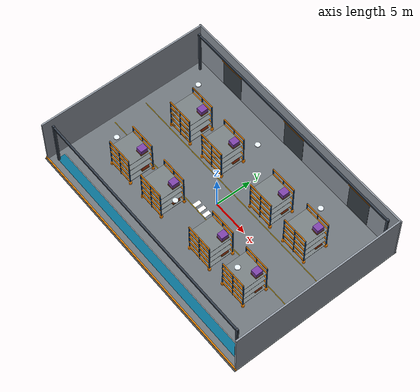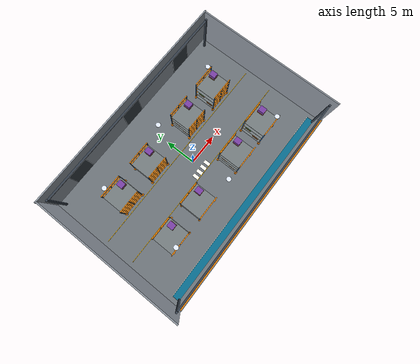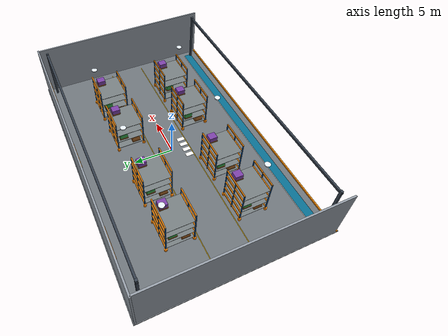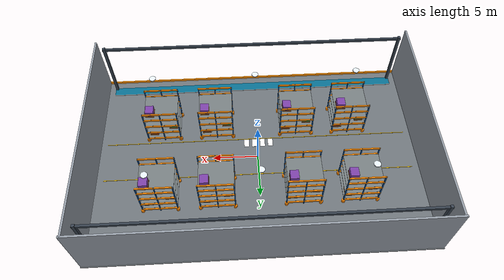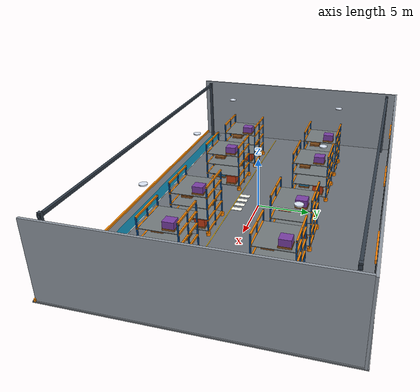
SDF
<sdf version="1.10">
 <world name="swarmroute_warehouse">
  <physics name="warehouse_physics" type="ignored">
   <max_step_size>0.002</max_step_size>
   <real_time_factor>1.0</real_time_factor>
  </physics>
  <plugin filename="gz-sim-physics-system" name="gz::sim::systems::Physics"/>
  <plugin filename="gz-sim-user-commands-system" name="gz::sim::systems::UserCommands"/>
  <plugin filename="gz-sim-scene-broadcaster-system" name="gz::sim::systems::SceneBroadcaster"/>
  <plugin filename="gz-sim-sensors-system" name="gz::sim::systems::Sensors">
   <render_engine>ogre2</render_engine>
  </plugin>
  <gravity>0 0 -9.81</gravity>
  <magnetic_field>5.5645e-6 22.8758e-6 -42.3884e-6</magnetic_field>
  <scene>
   <ambient>0.28 0.30 0.33 1</ambient>
   <background>0.035 0.045 0.06 1</background>
   <shadows>true</shadows>
   <grid>false</grid>
  </scene>
  <light type="directional" name="daylight">
   <pose>0 0 18 0 0 0</pose>
   <diffuse>0.72 0.76 0.82 1</diffuse>
   <specular>0.32 0.34 0.38 1</specular>
   <direction>-0.35 0.25 -0.9</direction>
  </light>
  <light type="point" name="highbay_sw">
   <pose>-11 -6 7 0 0 0</pose>
   <diffuse>0.85 0.90 1 1</diffuse>
   <specular>0.25 0.28 0.34 1</specular>
   <attenuation>
    <range>20</range>
    <constant>0.7</constant>
    <linear>0.03</linear>
    <quadratic>0.005</quadratic>
   </attenuation>
   <cast_shadows>false</cast_shadows>
  </light>
  <light type="point" name="highbay_sc">
   <pose>0 -6 7 0 0 0</pose>
   <diffuse>0.85 0.90 1 1</diffuse>
   <specular>0.25 0.28 0.34 1</specular>
   <attenuation>
    <range>20</range>
    <constant>0.7</constant>
    <linear>0.03</linear>
    <quadratic>0.005</quadratic>
   </attenuation>
   <cast_shadows>false</cast_shadows>
  </light>
  <light type="point" name="highbay_se">
   <pose>11 -6 7 0 0 0</pose>
   <diffuse>0.85 0.90 1 1</diffuse>
   <specular>0.25 0.28 0.34 1</specular>
   <attenuation>
    <range>20</range>
    <constant>0.7</constant>
    <linear>0.03</linear>
    <quadratic>0.005</quadratic>
   </attenuation>
   <cast_shadows>false</cast_shadows>
  </light>
  <light type="point" name="highbay_nw">
   <pose>-11 6 7 0 0 0</pose>
   <diffuse>0.85 0.90 1 1</diffuse>
   <specular>0.25 0.28 0.34 1</specular>
   <attenuation>
    <range>20</range>
    <constant>0.7</constant>
    <linear>0.03</linear>
    <quadratic>0.005</quadratic>
   </attenuation>
   <cast_shadows>false</cast_shadows>
  </light>
  <light type="point" name="highbay_nc">
   <pose>0 6 7 0 0 0</pose>
   <diffuse>0.85 0.90 1 1</diffuse>
   <specular>0.25 0.28 0.34 1</specular>
   <attenuation>
    <range>20</range>
    <constant>0.7</constant>
    <linear>0.03</linear>
    <quadratic>0.005</quadratic>
   </attenuation>
   <cast_shadows>false</cast_shadows>
  </light>
  <light type="point" name="highbay_ne">
   <pose>11 6 7 0 0 0</pose>
   <diffuse>0.85 0.90 1 1</diffuse>
   <specular>0.25 0.28 0.34 1</specular>
   <attenuation>
    <range>20</range>
    <constant>0.7</constant>
    <linear>0.03</linear>
    <quadratic>0.005</quadratic>
   </attenuation>
   <cast_shadows>false</cast_shadows>
  </light>
  <model name="warehouse_floor">
   <static>true</static>
   <link name="floor">
    <collision name="collision"><geometry><box><size>36 24 0.12</size></box></geometry></collision>
    <visual name="visual">
     <geometry><box><size>36 24 0.12</size></box></geometry>
     <material>
      <ambient>0.24 0.255 0.27 1</ambient>
      <diffuse>0.43 0.455 0.48 1</diffuse>
      <specular>0.28 0.30 0.32 1</specular>
     </material>
    </visual>
   </link>
  </model>
  <model name="north_wall">
   <static>true</static>
   <pose>0 11.8 3.5 0 0 0</pose>
   <link name="wall">
    <collision name="collision"><geometry><box><size>36 0.2 7</size></box></geometry></collision>
    <visual name="visual">
     <geometry><box><size>36 0.2 7</size></box></geometry>
     <material>
      <ambient>0.34 0.36 0.39 1</ambient>
      <diffuse>0.58 0.61 0.65 1</diffuse>
      <specular>0.25 0.25 0.25 1</specular>
     </material>
    </visual>
   </link>
  </model>
  <model name="south_safety_barrier">
   <static>true</static>
   <pose>0 -11.8 0.14 0 0 0</pose>
   <link name="barrier">
    <collision name="collision"><geometry><box><size>36 0.16 0.28</size></box></geometry></collision>
    <visual name="visual">
     <geometry><box><size>36 0.16 0.28</size></box></geometry>
     <material><ambient>0.75 0.35 0 1</ambient><diffuse>1 0.55 0.01 1</diffuse></material>
    </visual>
   </link>
  </model>
  <model name="east_wall">
   <static>true</static>
   <pose>17.8 0 3.5 0 0 0</pose>
   <link name="wall">
    <collision name="collision"><geometry><box><size>0.2 23.6 7</size></box></geometry></collision>
    <visual name="visual">
     <geometry><box><size>0.2 23.6 7</size></box></geometry>
     <material><ambient>0.34 0.36 0.39 1</ambient><diffuse>0.58 0.61 0.65 1</diffuse></material>
    </visual>
   </link>
  </model>
  <model name="west_wall">
   <static>true</static>
   <pose>-17.8 0 3.5 0 0 0</pose>
   <link name="wall">
    <collision name="collision"><geometry><box><size>0.2 23.6 7</size></box></geometry></collision>
    <visual name="visual">
     <geometry><box><size>0.2 23.6 7</size></box></geometry>
     <material><ambient>0.34 0.36 0.39 1</ambient><diffuse>0.58 0.61 0.65 1</diffuse></material>
    </visual>
   </link>
  </model>
  <model name="warehouse_details">
   <static>true</static>
   <link name="architecture">
    <visual name="aisle_south">
     <pose>0 -2.35 0.071 0 0 0</pose>
     <geometry><box><size>34 0.075 0.012</size></box></geometry>
     <material>
      <ambient>0.75 0.52 0.01 1</ambient>
      <diffuse>1 0.76 0.02 1</diffuse>
      <emissive>0.08 0.04 0 1</emissive>
     </material>
    </visual>
    <visual name="aisle_north">
     <pose>0 2.35 0.071 0 0 0</pose>
     <geometry><box><size>34 0.075 0.012</size></box></geometry>
     <material>
      <ambient>0.75 0.52 0.01 1</ambient>
      <diffuse>1 0.76 0.02 1</diffuse>
      <emissive>0.08 0.04 0 1</emissive>
     </material>
    </visual>
    <visual name="pedestrian_lane">
     <pose>0 -10.35 0.07 0 0 0</pose>
     <geometry><box><size>34 1.10 0.01</size></box></geometry>
     <material><ambient>0.02 0.25 0.34 1</ambient><diffuse>0.03 0.43 0.56 1</diffuse></material>
    </visual>
    <visual name="pedestrian_border">
     <pose>0 -9.78 0.076 0 0 0</pose>
     <geometry><box><size>34 0.07 0.014</size></box></geometry>
     <material><ambient>0.92 0.92 0.88 1</ambient><diffuse>1 1 0.96 1</diffuse></material>
    </visual>
    <visual name="crosswalk_1">
     <pose>-1.5 -1.8 0.078 0 0 0</pose>
     <geometry><box><size>0.55 1.0 0.015</size></box></geometry>
     <material><ambient>0.9 0.9 0.86 1</ambient><diffuse>1 1 0.96 1</diffuse></material>
    </visual>
    <visual name="crosswalk_2">
     <pose>-0.6 -1.8 0.078 0 0 0</pose>
     <geometry><box><size>0.55 1.0 0.015</size></box></geometry>
     <material><ambient>0.9 0.9 0.86 1</ambient><diffuse>1 1 0.96 1</diffuse></material>
    </visual>
    <visual name="crosswalk_3">
     <pose>0.3 -1.8 0.078 0 0 0</pose>
     <geometry><box><size>0.55 1.0 0.015</size></box></geometry>
     <material><ambient>0.9 0.9 0.86 1</ambient><diffuse>1 1 0.96 1</diffuse></material>
    </visual>
    <visual name="crosswalk_4">
     <pose>1.2 -1.8 0.078 0 0 0</pose>
     <geometry><box><size>0.55 1.0 0.015</size></box></geometry>
     <material><ambient>0.9 0.9 0.86 1</ambient><diffuse>1 1 0.96 1</diffuse></material>
    </visual>
    <visual name="column_nw">
     <pose>-16.8 10.8 3.5 0 0 0</pose>
     <geometry><box><size>0.28 0.28 7</size></box></geometry>
     <material>
      <ambient>0.11 0.13 0.16 1</ambient>
      <diffuse>0.22 0.26 0.31 1</diffuse>
      <specular>0.5 0.5 0.5 1</specular>
     </material>
    </visual>
    <visual name="column_ne">
     <pose>16.8 10.8 3.5 0 0 0</pose>
     <geometry><box><size>0.28 0.28 7</size></box></geometry>
     <material>
      <ambient>0.11 0.13 0.16 1</ambient>
      <diffuse>0.22 0.26 0.31 1</diffuse>
      <specular>0.5 0.5 0.5 1</specular>
     </material>
    </visual>
    <visual name="column_sw">
     <pose>-16.8 -10.8 3.5 0 0 0</pose>
     <geometry><box><size>0.28 0.28 7</size></box></geometry>
     <material>
      <ambient>0.11 0.13 0.16 1</ambient>
      <diffuse>0.22 0.26 0.31 1</diffuse>
      <specular>0.5 0.5 0.5 1</specular>
     </material>
    </visual>
    <visual name="column_se">
     <pose>16.8 -10.8 3.5 0 0 0</pose>
     <geometry><box><size>0.28 0.28 7</size></box></geometry>
     <material>
      <ambient>0.11 0.13 0.16 1</ambient>
      <diffuse>0.22 0.26 0.31 1</diffuse>
      <specular>0.5 0.5 0.5 1</specular>
     </material>
    </visual>
    <visual name="beam_north">
     <pose>0 10.8 6.75 0 0 0</pose>
     <geometry><box><size>34 0.24 0.28</size></box></geometry>
     <material><ambient>0.10 0.12 0.15 1</ambient><diffuse>0.20 0.24 0.29 1</diffuse></material>
    </visual>
    <visual name="beam_south">
     <pose>0 -10.8 6.75 0 0 0</pose>
     <geometry><box><size>34 0.24 0.28</size></box></geometry>
     <material><ambient>0.10 0.12 0.15 1</ambient><diffuse>0.20 0.24 0.29 1</diffuse></material>
    </visual>
    <visual name="dock_door_1">
     <pose>-11.5 11.68 2.35 0 0 0</pose>
     <geometry><box><size>3.4 0.05 4.25</size></box></geometry>
     <material>
      <ambient>0.10 0.12 0.14 1</ambient>
      <diffuse>0.22 0.25 0.28 1</diffuse>
      <specular>0.35 0.35 0.35 1</specular>
     </material>
    </visual>
    <visual name="dock_door_2">
     <pose>0 11.68 2.35 0 0 0</pose>
     <geometry><box><size>3.4 0.05 4.25</size></box></geometry>
     <material>
      <ambient>0.10 0.12 0.14 1</ambient>
      <diffuse>0.22 0.25 0.28 1</diffuse>
      <specular>0.35 0.35 0.35 1</specular>
     </material>
    </visual>
    <visual name="dock_door_3">
     <pose>11.5 11.68 2.35 0 0 0</pose>
     <geometry><box><size>3.4 0.05 4.25</size></box></geometry>
     <material>
      <ambient>0.10 0.12 0.14 1</ambient>
      <diffuse>0.22 0.25 0.28 1</diffuse>
      <specular>0.35 0.35 0.35 1</specular>
     </material>
    </visual>
    <visual name="dock_header_1">
     <pose>-11.5 11.62 4.75 0 0 0</pose>
     <geometry><box><size>3.7 0.12 0.28</size></box></geometry>
     <material><ambient>0.72 0.31 0 1</ambient><diffuse>1 0.52 0.01 1</diffuse></material>
    </visual>
    <visual name="dock_header_2">
     <pose>0 11.62 4.75 0 0 0</pose>
     <geometry><box><size>3.7 0.12 0.28</size></box></geometry>
     <material><ambient>0.72 0.31 0 1</ambient><diffuse>1 0.52 0.01 1</diffuse></material>
    </visual>
    <visual name="dock_header_3">
     <pose>11.5 11.62 4.75 0 0 0</pose>
     <geometry><box><size>3.7 0.12 0.28</size></box></geometry>
     <material><ambient>0.72 0.31 0 1</ambient><diffuse>1 0.52 0.01 1</diffuse></material>
    </visual>
    <visual name="fixture_sw">
     <pose>-11 -6 6.95 0 0 0</pose>
     <geometry><cylinder><radius>0.34</radius><length>0.10</length></cylinder></geometry>
     <material>
      <ambient>0.7 0.74 0.82 1</ambient>
      <diffuse>0.9 0.94 1 1</diffuse>
      <emissive>0.5 0.55 0.65 1</emissive>
     </material>
    </visual>
    <visual name="fixture_sc">
     <pose>0 -6 6.95 0 0 0</pose>
     <geometry><cylinder><radius>0.34</radius><length>0.10</length></cylinder></geometry>
     <material>
      <ambient>0.7 0.74 0.82 1</ambient>
      <diffuse>0.9 0.94 1 1</diffuse>
      <emissive>0.5 0.55 0.65 1</emissive>
     </material>
    </visual>
    <visual name="fixture_se">
     <pose>11 -6 6.95 0 0 0</pose>
     <geometry><cylinder><radius>0.34</radius><length>0.10</length></cylinder></geometry>
     <material>
      <ambient>0.7 0.74 0.82 1</ambient>
      <diffuse>0.9 0.94 1 1</diffuse>
      <emissive>0.5 0.55 0.65 1</emissive>
     </material>
    </visual>
    <visual name="fixture_nw">
     <pose>-11 6 6.95 0 0 0</pose>
     <geometry><cylinder><radius>0.34</radius><length>0.10</length></cylinder></geometry>
     <material>
      <ambient>0.7 0.74 0.82 1</ambient>
      <diffuse>0.9 0.94 1 1</diffuse>
      <emissive>0.5 0.55 0.65 1</emissive>
     </material>
    </visual>
    <visual name="fixture_nc">
     <pose>0 6 6.95 0 0 0</pose>
     <geometry><cylinder><radius>0.34</radius><length>0.10</length></cylinder></geometry>
     <material>
      <ambient>0.7 0.74 0.82 1</ambient>
      <diffuse>0.9 0.94 1 1</diffuse>
      <emissive>0.5 0.55 0.65 1</emissive>
     </material>
    </visual>
    <visual name="fixture_ne">
     <pose>11 6 6.95 0 0 0</pose>
     <geometry><cylinder><radius>0.34</radius><length>0.10</length></cylinder></geometry>
     <material>
      <ambient>0.7 0.74 0.82 1</ambient>
      <diffuse>0.9 0.94 1 1</diffuse>
      <emissive>0.5 0.55 0.65 1</emissive>
     </material>
    </visual>
   </link>
  </model>
  <include><uri>model://swarmroute_rack</uri><name>rack_north_01</name><pose>-10.5 -4.5 0 0 0 0</pose></include>
  <include><uri>model://swarmroute_rack</uri><name>rack_north_02</name><pose>-4.5 -4.5 0 0 0 0</pose></include>
  <include><uri>model://swarmroute_rack</uri><name>rack_north_03</name><pose>4.5 -4.5 0 0 0 0</pose></include>
  <include><uri>model://swarmroute_rack</uri><name>rack_north_04</name><pose>10.5 -4.5 0 0 0 0</pose></include>
  <include><uri>model://swarmroute_rack</uri><name>rack_south_01</name><pose>-10.5 4.5 0 0 0 0</pose></include>
  <include><uri>model://swarmroute_rack</uri><name>rack_south_02</name><pose>-4.5 4.5 0 0 0 0</pose></include>
  <include><uri>model://swarmroute_rack</uri><name>rack_south_03</name><pose>4.5 4.5 0 0 0 0</pose></include>
  <include><uri>model://swarmroute_rack</uri><name>rack_south_04</name><pose>10.5 4.5 0 0 0 0</pose></include>
 </world>
</sdf>

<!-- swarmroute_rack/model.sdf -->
<sdf version="1.10">
  <model name="swarmroute_rack">
    <static>true</static>
    <link name="rack">
      <collision name="collision"><pose>0 0 2.4 0 0 0</pose><geometry><box><size>3.9 3.9 4.8</size></box></geometry></collision>

      <!-- Blue uprights -->
      <visual name="post_nw"><pose>-1.82 1.70 2.4 0 0 0</pose><geometry><box><size>0.11 0.11 4.8</size></box></geometry><material><ambient>0.03 0.16 0.30 1</ambient><diffuse>0.04 0.30 0.58 1</diffuse><specular>0.45 0.45 0.45 1</specular></material></visual>
      <visual name="post_ne"><pose>1.82 1.70 2.4 0 0 0</pose><geometry><box><size>0.11 0.11 4.8</size></box></geometry><material><ambient>0.03 0.16 0.30 1</ambient><diffuse>0.04 0.30 0.58 1</diffuse><specular>0.45 0.45 0.45 1</specular></material></visual>
      <visual name="post_sw"><pose>-1.82 -1.70 2.4 0 0 0</pose><geometry><box><size>0.11 0.11 4.8</size></box></geometry><material><ambient>0.03 0.16 0.30 1</ambient><diffuse>0.04 0.30 0.58 1</diffuse><specular>0.45 0.45 0.45 1</specular></material></visual>
      <visual name="post_se"><pose>1.82 -1.70 2.4 0 0 0</pose><geometry><box><size>0.11 0.11 4.8</size></box></geometry><material><ambient>0.03 0.16 0.30 1</ambient><diffuse>0.04 0.30 0.58 1</diffuse><specular>0.45 0.45 0.45 1</specular></material></visual>
      <visual name="post_mid_n"><pose>0 1.70 2.4 0 0 0</pose><geometry><box><size>0.10 0.10 4.8</size></box></geometry><material><ambient>0.03 0.16 0.30 1</ambient><diffuse>0.04 0.30 0.58 1</diffuse></material></visual>
      <visual name="post_mid_s"><pose>0 -1.70 2.4 0 0 0</pose><geometry><box><size>0.10 0.10 4.8</size></box></geometry><material><ambient>0.03 0.16 0.30 1</ambient><diffuse>0.04 0.30 0.58 1</diffuse></material></visual>

      <!-- Orange load beams -->
      <visual name="beam_n_1"><pose>0 1.70 0.45 0 0 0</pose><geometry><box><size>3.75 0.13 0.16</size></box></geometry><material><ambient>0.68 0.34 0.01 1</ambient><diffuse>0.95 0.52 0.015 1</diffuse></material></visual>
      <visual name="beam_n_2"><pose>0 1.70 1.55 0 0 0</pose><geometry><box><size>3.75 0.13 0.16</size></box></geometry><material><ambient>0.68 0.34 0.01 1</ambient><diffuse>0.95 0.52 0.015 1</diffuse></material></visual>
      <visual name="beam_n_3"><pose>0 1.70 2.65 0 0 0</pose><geometry><box><size>3.75 0.13 0.16</size></box></geometry><material><ambient>0.68 0.34 0.01 1</ambient><diffuse>0.95 0.52 0.015 1</diffuse></material></visual>
      <visual name="beam_n_4"><pose>0 1.70 3.75 0 0 0</pose><geometry><box><size>3.75 0.13 0.16</size></box></geometry><material><ambient>0.68 0.34 0.01 1</ambient><diffuse>0.95 0.52 0.015 1</diffuse></material></visual>
      <visual name="beam_n_5"><pose>0 1.70 4.72 0 0 0</pose><geometry><box><size>3.75 0.13 0.16</size></box></geometry><material><ambient>0.68 0.34 0.01 1</ambient><diffuse>0.95 0.52 0.015 1</diffuse></material></visual>
      <visual name="beam_s_1"><pose>0 -1.70 0.45 0 0 0</pose><geometry><box><size>3.75 0.13 0.16</size></box></geometry><material><ambient>0.68 0.34 0.01 1</ambient><diffuse>0.95 0.52 0.015 1</diffuse></material></visual>
      <visual name="beam_s_2"><pose>0 -1.70 1.55 0 0 0</pose><geometry><box><size>3.75 0.13 0.16</size></box></geometry><material><ambient>0.68 0.34 0.01 1</ambient><diffuse>0.95 0.52 0.015 1</diffuse></material></visual>
      <visual name="beam_s_3"><pose>0 -1.70 2.65 0 0 0</pose><geometry><box><size>3.75 0.13 0.16</size></box></geometry><material><ambient>0.68 0.34 0.01 1</ambient><diffuse>0.95 0.52 0.015 1</diffuse></material></visual>
      <visual name="beam_s_4"><pose>0 -1.70 3.75 0 0 0</pose><geometry><box><size>3.75 0.13 0.16</size></box></geometry><material><ambient>0.68 0.34 0.01 1</ambient><diffuse>0.95 0.52 0.015 1</diffuse></material></visual>
      <visual name="beam_s_5"><pose>0 -1.70 4.72 0 0 0</pose><geometry><box><size>3.75 0.13 0.16</size></box></geometry><material><ambient>0.68 0.34 0.01 1</ambient><diffuse>0.95 0.52 0.015 1</diffuse></material></visual>

      <!-- Galvanized shelf decks -->
      <visual name="deck_1"><pose>0 0 0.49 0 0 0</pose><geometry><box><size>3.64 3.24 0.055</size></box></geometry><material><ambient>0.22 0.24 0.25 1</ambient><diffuse>0.46 0.49 0.50 1</diffuse><specular>0.65 0.65 0.65 1</specular></material></visual>
      <visual name="deck_2"><pose>0 0 1.59 0 0 0</pose><geometry><box><size>3.64 3.24 0.055</size></box></geometry><material><ambient>0.22 0.24 0.25 1</ambient><diffuse>0.46 0.49 0.50 1</diffuse><specular>0.65 0.65 0.65 1</specular></material></visual>
      <visual name="deck_3"><pose>0 0 2.69 0 0 0</pose><geometry><box><size>3.64 3.24 0.055</size></box></geometry><material><ambient>0.22 0.24 0.25 1</ambient><diffuse>0.46 0.49 0.50 1</diffuse><specular>0.65 0.65 0.65 1</specular></material></visual>
      <visual name="deck_4"><pose>0 0 3.79 0 0 0</pose><geometry><box><size>3.64 3.24 0.055</size></box></geometry><material><ambient>0.22 0.24 0.25 1</ambient><diffuse>0.46 0.49 0.50 1</diffuse><specular>0.65 0.65 0.65 1</specular></material></visual>

      <!-- Pallets and varied loads -->
      <visual name="pallet_a"><pose>-1.15 -0.78 0.60 0 0 0</pose><geometry><box><size>0.95 1.05 0.16</size></box></geometry><material><ambient>0.32 0.18 0.07 1</ambient><diffuse>0.58 0.34 0.13 1</diffuse></material></visual>
      <visual name="load_a"><pose>-1.15 -0.78 1.02 0 0 0</pose><geometry><box><size>0.88 0.98 0.68</size></box></geometry><material><ambient>0.34 0.20 0.08 1</ambient><diffuse>0.66 0.40 0.15 1</diffuse></material></visual>
      <visual name="pallet_b"><pose>0 -0.78 0.60 0 0 0</pose><geometry><box><size>0.95 1.05 0.16</size></box></geometry><material><ambient>0.32 0.18 0.07 1</ambient><diffuse>0.58 0.34 0.13 1</diffuse></material></visual>
      <visual name="load_b"><pose>0 -0.78 0.95 0 0 0</pose><geometry><box><size>0.88 0.98 0.54</size></box></geometry><material><ambient>0.10 0.30 0.42 1</ambient><diffuse>0.16 0.50 0.66 1</diffuse></material></visual>
      <visual name="pallet_c"><pose>1.15 0.78 0.60 0 0 0</pose><geometry><box><size>0.95 1.05 0.16</size></box></geometry><material><ambient>0.32 0.18 0.07 1</ambient><diffuse>0.58 0.34 0.13 1</diffuse></material></visual>
      <visual name="load_c"><pose>1.15 0.78 1.03 0 0 0</pose><geometry><box><size>0.88 0.98 0.70</size></box></geometry><material><ambient>0.43 0.12 0.05 1</ambient><diffuse>0.78 0.24 0.08 1</diffuse></material></visual>
      <visual name="pallet_d"><pose>-1.15 0.78 1.70 0 0 0</pose><geometry><box><size>0.95 1.05 0.16</size></box></geometry><material><ambient>0.32 0.18 0.07 1</ambient><diffuse>0.58 0.34 0.13 1</diffuse></material></visual>
      <visual name="load_d"><pose>-1.15 0.78 2.08 0 0 0</pose><geometry><box><size>0.88 0.98 0.60</size></box></geometry><material><ambient>0.12 0.34 0.16 1</ambient><diffuse>0.20 0.62 0.28 1</diffuse></material></visual>
      <visual name="pallet_e"><pose>0 -0.78 2.80 0 0 0</pose><geometry><box><size>0.95 1.05 0.16</size></box></geometry><material><ambient>0.32 0.18 0.07 1</ambient><diffuse>0.58 0.34 0.13 1</diffuse></material></visual>
      <visual name="load_e"><pose>0 -0.78 3.20 0 0 0</pose><geometry><box><size>0.88 0.98 0.64</size></box></geometry><material><ambient>0.34 0.20 0.08 1</ambient><diffuse>0.66 0.40 0.15 1</diffuse></material></visual>
      <visual name="pallet_f"><pose>1.15 0.78 3.90 0 0 0</pose><geometry><box><size>0.95 1.05 0.16</size></box></geometry><material><ambient>0.32 0.18 0.07 1</ambient><diffuse>0.58 0.34 0.13 1</diffuse></material></visual>
      <visual name="load_f"><pose>1.15 0.78 4.28 0 0 0</pose><geometry><box><size>0.88 0.98 0.60</size></box></geometry><material><ambient>0.26 0.14 0.36 1</ambient><diffuse>0.48 0.25 0.65 1</diffuse></material></visual>

      <!-- High-visibility post guards -->
      <visual name="guard_nw"><pose>-1.82 1.70 0.18 0 0 0</pose><geometry><cylinder><radius>0.19</radius><length>0.36</length></cylinder></geometry><material><ambient>0.72 0.31 0 1</ambient><diffuse>1 0.52 0.01 1</diffuse></material></visual>
      <visual name="guard_ne"><pose>1.82 1.70 0.18 0 0 0</pose><geometry><cylinder><radius>0.19</radius><length>0.36</length></cylinder></geometry><material><ambient>0.72 0.31 0 1</ambient><diffuse>1 0.52 0.01 1</diffuse></material></visual>
      <visual name="guard_sw"><pose>-1.82 -1.70 0.18 0 0 0</pose><geometry><cylinder><radius>0.19</radius><length>0.36</length></cylinder></geometry><material><ambient>0.72 0.31 0 1</ambient><diffuse>1 0.52 0.01 1</diffuse></material></visual>
      <visual name="guard_se"><pose>1.82 -1.70 0.18 0 0 0</pose><geometry><cylinder><radius>0.19</radius><length>0.36</length></cylinder></geometry><material><ambient>0.72 0.31 0 1</ambient><diffuse>1 0.52 0.01 1</diffuse></material></visual>
    </link>
  </model>
</sdf>
